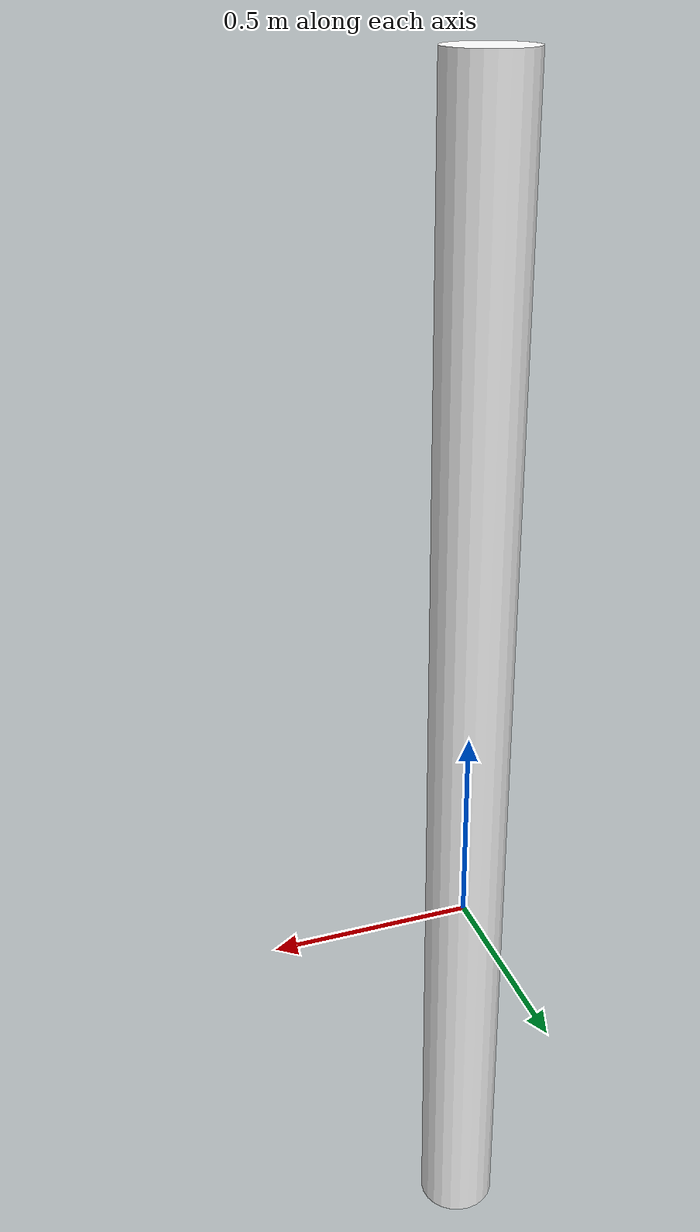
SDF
<?xml version="1.0"?>
<sdf version="1.6">
  <model name="pillar">
    <static>true</static>
    <link name="pillar_link">
      <pose>0 0 0.5 0 0 0</pose>
      <collision name="collision">
        <geometry>
          <cylinder>
            <radius>0.1</radius>
            <length>3.0</length>
          </cylinder>
        </geometry>
      </collision>
      <visual name="visual">
        <geometry>
          <cylinder>
            <radius>0.1</radius>
            <length>3.0</length>
          </cylinder>
        </geometry>
        <material>
          <ambient>1 1 1 1</ambient>
        </material>
      </visual>
    </link>
  </model>
</sdf>
